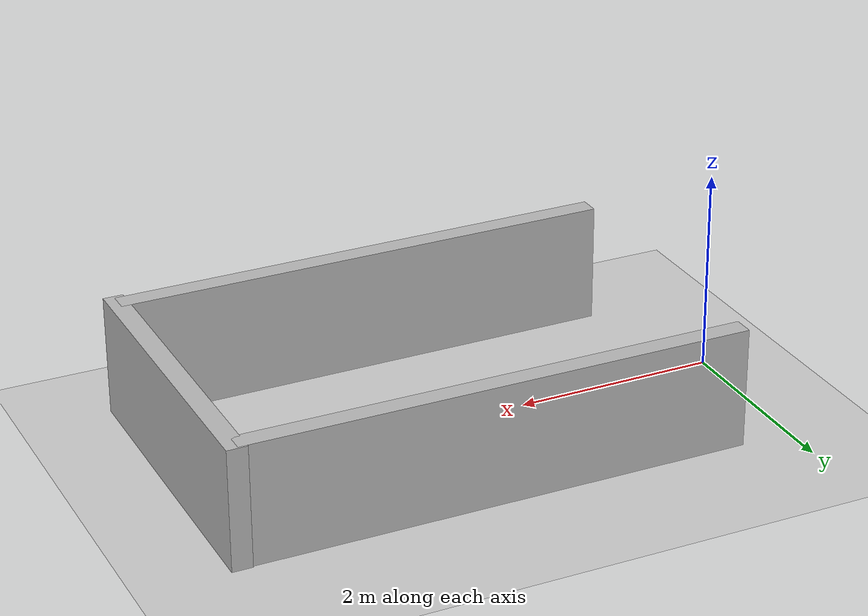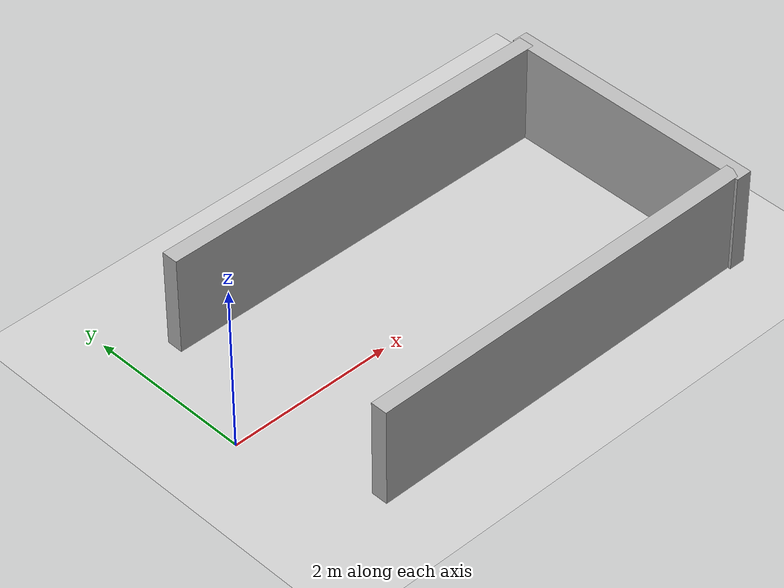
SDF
<?xml version="1.0"?>
<sdf version="1.6">
  <world name="v2-04g-maneuver-s4915">
    <gravity>0 0 -9.81</gravity>
    <physics name="v2_deterministic" type="ode">
      <max_step_size>0.002</max_step_size>
      <real_time_update_rate>500</real_time_update_rate>
    </physics>
    <include>
      <uri>model://sun</uri>
    </include>
    <include>
      <uri>model://ground_plane</uri>
    </include>
    <model name="bay-left">
      <static>true</static>
      <pose>3.001853224 1.475978852 0.600000000 0 0 -0.003041763</pose>
      <link name="link">
        <collision name="collision">
          <geometry>
            <box>
              <size>5.000000 0.200000 1.200000</size>
            </box>
          </geometry>
        </collision>
        <visual name="visual">
          <geometry>
            <box>
              <size>5.000000 0.200000 1.200000</size>
            </box>
          </geometry>
        </visual>
      </link>
    </model>
    <model name="bay-right">
      <static>true</static>
      <pose>3.000605795 -1.490742997 0.600000000 0 0 0.004370711</pose>
      <link name="link">
        <collision name="collision">
          <geometry>
            <box>
              <size>5.000000 0.200000 1.200000</size>
            </box>
          </geometry>
        </collision>
        <visual name="visual">
          <geometry>
            <box>
              <size>5.000000 0.200000 1.200000</size>
            </box>
          </geometry>
        </visual>
      </link>
    </model>
    <model name="bay-back">
      <static>true</static>
      <pose>5.508714263 -0.015266658 0.600000000 0 0 -0.003621014</pose>
      <link name="link">
        <collision name="collision">
          <geometry>
            <box>
              <size>0.200000 3.200000 1.200000</size>
            </box>
          </geometry>
        </collision>
        <visual name="visual">
          <geometry>
            <box>
              <size>0.200000 3.200000 1.200000</size>
            </box>
          </geometry>
        </visual>
      </link>
    </model>
  </world>
</sdf>
